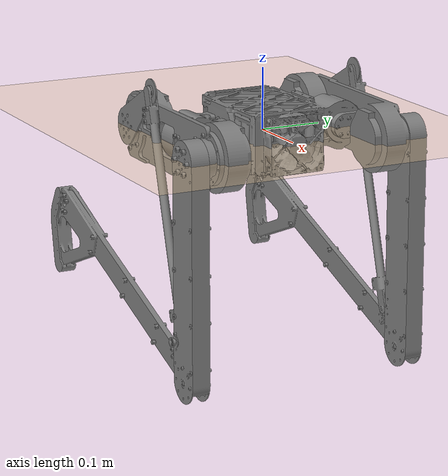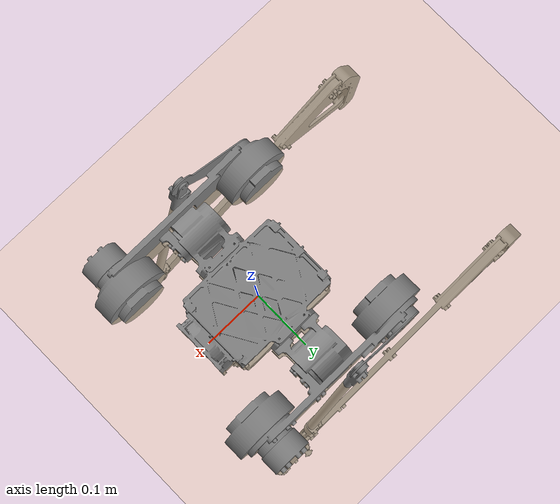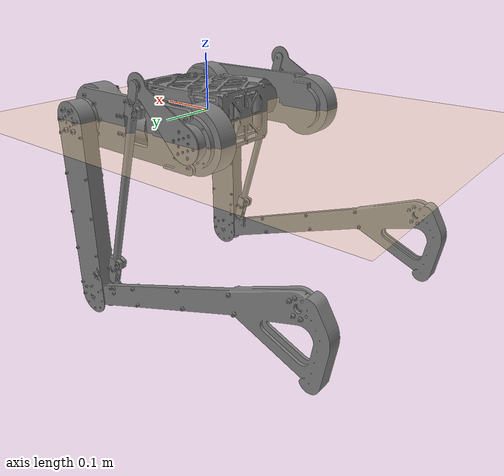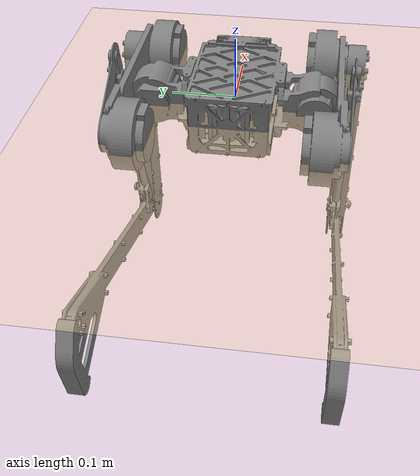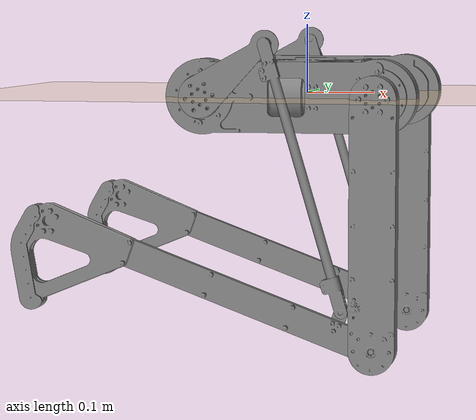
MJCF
<mujoco model="SpiderBotInitPos">
    <compiler angle="radian" />
    <asset>
        <mesh name="bodyNCS-v1" file="meshes/bodyNCS-v1.stl" scale="0.001 0.001 0.001" />
        <mesh name="HipLeftNCS-v1" file="meshes/HipLeftNCS-v1.stl" scale="0.001 0.001 0.001" />
        <mesh name="HipRightNCS-v1" file="meshes/HipRightNCS-v1.stl" scale="0.001 0.001 0.001" />
        <mesh name="CamLeftNCS-v1" file="meshes/CamLeftNCS-v1.stl" scale="0.001 0.001 0.001" />
        <mesh name="CamRightNCS-v1" file="meshes/CamRightNCS-v1.stl" scale="0.001 0.001 0.001" />
        <mesh name="ThighLeftNCS-v1" file="meshes/ThighLeftNCS-v1.stl" scale="0.001 0.001 0.001" />
        <mesh name="ThighRightNCS-v1" file="meshes/ThighRightNCS-v1.stl" scale="0.001 0.001 0.001" />
        <mesh name="PushrodLeftNCS-v1" file="meshes/PushrodLeftNCS-v1.stl" scale="0.001 0.001 0.001" />
        <mesh name="PushrodRightNCS-v1" file="meshes/PushrodRightNCS-v1.stl" scale="0.001 0.001 0.001" />
        <mesh name="FootFlatLeftNCS-v1" file="meshes/FootFlatLeftNCS-v1.stl" scale="0.001 0.001 0.001" />
        <mesh name="FootFlatRightNCS-v1" file="meshes/FootFlatRightNCS-v1.stl" scale="0.001 0.001 0.001" />
    </asset>
    <worldbody>
        <light directional="true" pos="-0.5 0.5 3" dir="0 0 -1" />
        <geom pos="0 0 0" size="1 1 1" type="plane" rgba="1 0.83 0.61 0.5" />
        <body name="bodyNCS-v1" pos="0.0 0.0 0.0" euler="-0.0 0.0 -0.0">
            <geom name="bodyNCS-v1_geom" type="mesh" mesh="bodyNCS-v1" pos="0 0 0" euler="0 0 0" />
            <inertial mass="1.8141006934908845" pos="0.0016690918854414011 4.297697354650468e-07 9.498539066587414e-06" fullinertia="0.012823544204434234 0.004661054292120578 0.015210658991172597 8.889789342507086e-08 1.4632265547397721e-06 5.980362454802101e-07" />
            <body name="HipLeftNCS-v1" pos="0.027294924660796353 0.12800000000861275 2.943479682215866e-11" euler="1.3877787807814452e-16 -1.4966300947946358e-15 -2.2837196633848203e-15">
                <joint name="bodyNCS-v1_Révolution-1" type="hinge" axis="1.0 2.2837196633848203e-15 -1.4966300947946364e-15" pos="7.533920364649616e-08 -8.612749402386916e-12 -2.943479682227143e-11" />
                <geom name="HipLeftNCS-v1_geom" type="mesh" mesh="HipLeftNCS-v1" pos="0 0 0" euler="0 0 0" />
                <inertial mass="1.0501006524075551" pos="-0.023170080111601363 0.01601844798341781 0.00019232179773001414" fullinertia="0.0010261889666255152 0.015466200097397598 0.015060127267031861 0.00032793131342943903 3.2969505953295807e-07 5.665805698538165e-06" />
                <body name="CamLeftNCS-v1" pos="-0.14899999999999997 0.05190000000000055 -6.275581499217567e-17" euler="3.835693940410427e-15 -0.6690144377010104 5.656737523464365e-15">
                    <joint name="HipLeftNCS-v1_Révolution-3" type="hinge" axis="1.400291951820333e-15 1.0 -1.7013150303580576e-15" pos="5.908032475837087e-08 -8.613693092292157e-12 -4.6749456435001946e-08" />
                    <geom name="CamLeftNCS-v1_geom" type="mesh" mesh="CamLeftNCS-v1" pos="0 0 0" euler="0 0 0" />
                    <inertial mass="0.013438060017115797" pos="0.04624089887284016 0.000999999999999985 3.469446951953614e-17" fullinertia="2.4512351100885755e-06 3.092731646986336e-05 2.8485040066453047e-05 1.801808255919883e-21 1.7364175418713157e-20 -8.606276960583285e-21" />
                    <body name="PushrodLeftNCS-v1" pos="0.12000000000000002 0.002000000000000064 6.217248937900877e-17" euler="-2.991573704877998e-16 0.3802544239171384 1.0442956869030758e-16">
                        <joint name="CamLeftNCS-v1_Révolution-11" type="hinge" axis="-1.925119249380546e-15 -1.0 7.822740824632476e-16" pos="1.945438393592202e-07 -8.613887381237563e-12 3.7858752974102237e-07" />
                        <geom name="PushrodLeftNCS-v1_geom" type="mesh" mesh="PushrodLeftNCS-v1" pos="0 0 0" euler="0 0 0" />
                        <inertial mass="0.045198290927437025" pos="-0.001446515823232103 0.000977075029490559 -0.19135709372461387" fullinertia="0.0009971743464509478 0.0009977072590840932 2.7437611486143246e-06 -5.985238375481201e-08 -2.061252304671004e-07 2.1901888566934144e-08" />
                        <body name="FootFlatLeftNCS-v1" pos="0.02855367201978885 0.007199999999993559 -0.4512389573674719" euler="2.0003451568133033e-16 0.6378259799572888 -7.097411264639133e-16">
                            <joint name="ThighLeftNCS-v1_Révolution-16" type="hinge" axis="1.4218005261664127e-15 1.0 3.5713371365114485e-16" pos="7.080575658267492e-08 0.009999999991392172 2.5739876197955356e-08" />
                            <geom name="FootFlatLeftNCS-v1_geom" type="mesh" mesh="FootFlatLeftNCS-v1" pos="0 0 0" euler="0 0 0" />
                            <inertial mass="0.40480619575285565" pos="-0.3498044515244306 -9.121449945620026e-05 -0.01885167996799829" fullinertia="0.000564280587522452 0.011988532191555372 0.011449608428725881 8.251728556653091e-06 -0.0011145682371683841 1.2513472421598216e-06" />
                        </body>
                    </body>
                </body>
                <body name="ThighLeftNCS-v1" pos="0.10100000000000009 0.04610000000000028 -5.921835243606678e-15" euler="1.1092415341165026e-15 -5.768213968058116e-17 2.190191360522918e-15">
                    <joint name="HipLeftNCS-v1_Révolution-5" type="hinge" axis="-9.3528302861902e-17 1.0 -1.2480194121946472e-15" pos="7.533920345914602e-08 -8.6128326692788e-12 -2.94290325443319e-11" />
                    <geom name="ThighLeftNCS-v1_geom" type="mesh" mesh="ThighLeftNCS-v1" pos="0 0 0" euler="0 0 0" />
                    <inertial mass="0.3669710179821286" pos="0.0009733420828806695 0.014982943361960467 -0.1411118417746592" fullinertia="0.005373722207071361 0.005523505431308955 0.00022576002275628121 6.739471820165784e-07 7.138676799726336e-05 6.501506690879594e-06" />
                    <body name="FootFlatLeftNCS-v1" pos="-1.7763568394002506e-16 0.014999999999994565 -0.34999999999999704" euler="-1.6621147186446907e-15 0.34906596617341706 1.6513173596098987e-15">
                        <joint name="ThighLeftNCS-v1_Révolution-16" type="hinge" axis="1.4218005261664127e-15 1.0 3.5713371365114485e-16" pos="7.080575658267492e-08 0.009999999991392172 2.5739876197955356e-08" />
                        <geom name="FootFlatLeftNCS-v1_geom" type="mesh" mesh="FootFlatLeftNCS-v1" pos="0 0 0" euler="0 0 0" />
                        <inertial mass="0.40480619575285565" pos="-0.3498044515244306 -9.121449945620026e-05 -0.01885167996799829" fullinertia="0.000564280587522452 0.011988532191555372 0.011449608428725881 8.251728556653091e-06 -0.0011145682371683841 1.2513472421598216e-06" />
                    </body>
                </body>
            </body>
            <body name="HipRightNCS-v1" pos="0.027294924660796194 -0.128000000008613 -2.9434570336661634e-11" euler="2.0118850133607936e-31 -9.703576596896807e-16 2.6849387220306373e-16">
                <joint name="bodyNCS-v1_Révolution-2" type="hinge" axis="1.0 -2.6849387220306373e-16 -9.703576596896807e-16" pos="7.533920380609072e-08 8.612999202719273e-12 2.9434570336588525e-11" />
                <geom name="HipRightNCS-v1_geom" type="mesh" mesh="HipRightNCS-v1" pos="0 0 0" euler="0 0 0" />
                <inertial mass="1.0500114425905998" pos="-0.023158859460218346 -0.01601691326758222 0.00019341398621135938" fullinertia="0.0010260381076138345 0.015464526431425256 0.015058544614084905 -0.0003277184725226477 4.716969465182008e-07 -5.645088300916077e-06" />
                <body name="CamRightNCS-v1" pos="-0.149 -0.05190000000000351 -1.5529991890639582e-17" euler="-2.5277990756924652e-15 -0.6690144082452676 -3.2427664985672246e-15">
                    <joint name="HipRightNCS-v1_Révolution-4" type="hinge" axis="1.464376712029399e-15 -1.0 -1.816366398505605e-15" pos="5.911683784664286e-08 8.616551916589703e-12 -4.670327587505701e-08" />
                    <geom name="CamRightNCS-v1_geom" type="mesh" mesh="CamRightNCS-v1" pos="0 0 0" euler="0 0 0" />
                    <inertial mass="0.01343806001711578" pos="0.04624089887284224 -0.0009999999999999818 6.175615574477433e-16" fullinertia="2.4512351100882354e-06 3.0927316469862046e-05 2.848504006645187e-05 2.604087226982273e-20 7.089665768518494e-19 2.7074079300310204e-21" />
                    <body name="PushrodRightNCS-v1" pos="0.12000000000000002 -0.0019999999999999575 0.0" euler="-1.960443741555081e-16 0.38025441630357476 1.8928686103627228e-15">
                        <joint name="CamRightNCS-v1_Révolution-12" type="hinge" axis="2.1382781202744477e-16 -1.0 -1.3251514843764088e-15" pos="1.9324867150455175e-07 8.616690693831592e-12 3.8192617304905975e-07" />
                        <geom name="PushrodRightNCS-v1_geom" type="mesh" mesh="PushrodRightNCS-v1" pos="0 0 0" euler="0 0 0" />
                        <inertial mass="0.04519829092743693" pos="-0.0014470160711916383 -0.0005227074404325859 -0.19135653035872227" fullinertia="0.0009971748677209185 0.00099769749323576 2.754001731674282e-06 1.5073202816870886e-09 -2.106631887881195e-07 3.390059863912155e-06" />
                    </body>
                </body>
                <body name="ThighRightNCS-v1" pos="0.10100000000000002 -0.0460999999999987 -1.632056787904445e-15" euler="2.706168622523813e-16 -7.575705843326422e-16 -8.941671197303739e-16">
                    <joint name="HipRightNCS-v1_Révolution-6" type="hinge" axis="6.263024068383307e-16 -1.0000000000000002 2.706168622523819e-16" pos="7.533920376445739e-08 8.611666935157098e-12 2.9436104387195746e-11" />
                    <geom name="ThighRightNCS-v1_geom" type="mesh" mesh="ThighRightNCS-v1" pos="0 0 0" euler="0 0 0" />
                    <inertial mass="0.36647662097327144" pos="0.0009430110630471735 -0.015029284942483265 -0.14160752239628097" fullinertia="0.005370520434600625 0.005519928795292459 0.00022527180210302558 -5.426703502607099e-07 6.953833720501886e-05 -7.1433033168342474e-06" />
                    <body name="FootFlatRightNCS-v1" pos="-5.329070518200751e-17 -0.01500000000000508 -0.3499999999999966" euler="-3.1607355137627363e-16 0.3490658508258684 4.046896487611588e-16">
                        <joint name="ThighRightNCS-v1_Révolution-17" type="hinge" axis="1.987196672270725e-16 -1.0 1.7149272387492012e-16" pos="7.078562666491229e-08 -0.009999999991383374 2.5795183052764692e-08" />
                        <geom name="FootFlatRightNCS-v1_geom" type="mesh" mesh="FootFlatRightNCS-v1" pos="0 0 0" euler="0 0 0" />
                        <inertial mass="0.4048061957528556" pos="-0.34980445152445383 3.012538221312697e-05 -0.018851679968001217" fullinertia="0.0005642835881901142 0.011988532191576334 0.011449611429368492 -5.983121530805039e-06 -0.0011145682371841638 -7.851587892316993e-07" />
                        <body name="PushrodRightNCS-v1" pos="-0.2916301079661987 0.007199999999999917 0.3455195883339705" euler="-1.6736528667358267e-15 -0.6378258427675605 -9.486394507470135e-16">
                            <joint name="CamRightNCS-v1_Révolution-12" type="hinge" axis="2.1382781202744477e-16 -1.0 -1.3251514843764088e-15" pos="1.9324867150455175e-07 8.616690693831592e-12 3.8192617304905975e-07" />
                            <geom name="PushrodRightNCS-v1_geom" type="mesh" mesh="PushrodRightNCS-v1" pos="0 0 0" euler="0 0 0" />
                            <inertial mass="0.04519829092743693" pos="-0.0014470160711916383 -0.0005227074404325859 -0.19135653035872227" fullinertia="0.0009971748677209185 0.00099769749323576 2.754001731674282e-06 1.5073202816870886e-09 -2.106631887881195e-07 3.390059863912155e-06" />
                        </body>
                    </body>
                </body>
            </body>
        </body>
    </worldbody>
</mujoco>
